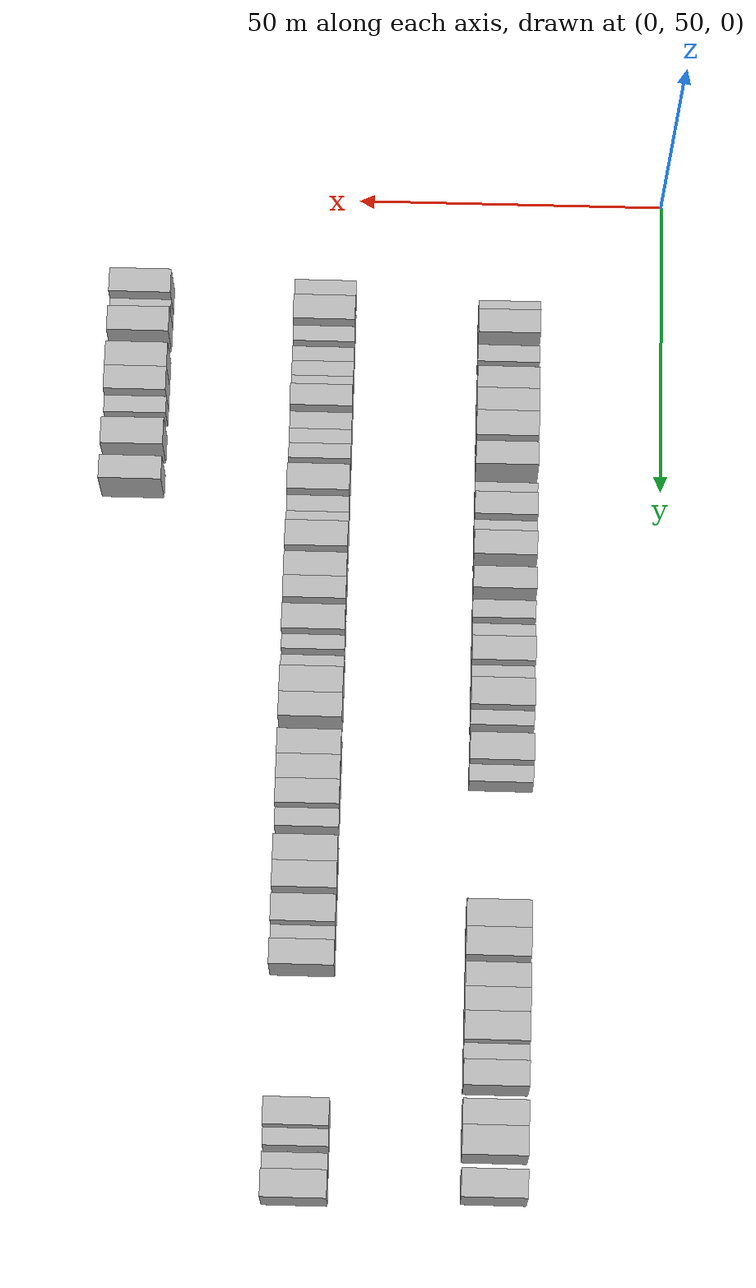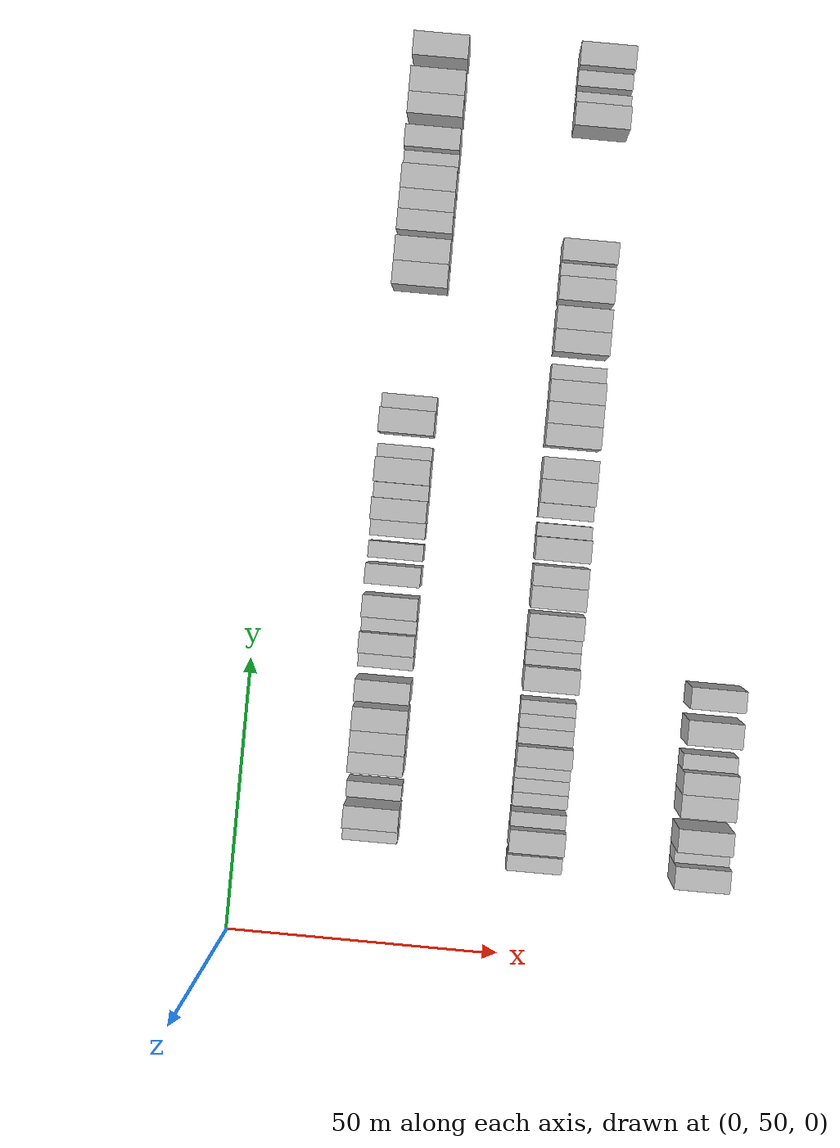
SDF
<sdf version="1.6">
 <world name="default">
  <model name="building_134">
   <static>1</static>
   <pose>25.0000 71.1269 0 0.000000 0.000000 0.000000</pose>
   <link name="link">
    <pose>0 0 3.00 0 0 0</pose>
    <collision name="collision"><geometry><box><size>10.0000 2.7324 6.0000</size></box></geometry></collision>
    <visual name="visual">
     <cast_shadows>0</cast_shadows>
     <geometry><box><size>10.0000 2.7324 6.0000</size></box></geometry>
     <material>
      <script>
       <uri>model://HANNAS_wall/materials/scripts</uri>
       <uri>model://HANNAS_wall/materials/textures</uri>
       <name>vrc/HANNAS_wall</name>
      </script>
     </material>
    </visual>
   </link>
  </model>
  <model name="building_135">
   <static>1</static>
   <pose>25.0000 74.4935 0 0.000000 0.000000 0.000000</pose>
   <link name="link">
    <pose>0 0 4.50 0 0 0</pose>
    <collision name="collision"><geometry><box><size>10.0000 4.0009 9.0000</size></box></geometry></collision>
    <visual name="visual">
     <cast_shadows>0</cast_shadows>
     <geometry><box><size>10.0000 4.0009 9.0000</size></box></geometry>
     <material>
      <script>
       <uri>model://HANNAS_wall/materials/scripts</uri>
       <uri>model://HANNAS_wall/materials/textures</uri>
       <name>vrc/HANNAS_wall</name>
      </script>
     </material>
    </visual>
   </link>
  </model>
  <model name="building_136">
   <static>1</static>
   <pose>25.0000 78.9356 0 0.000000 0.000000 0.000000</pose>
   <link name="link">
    <pose>0 0 3.00 0 0 0</pose>
    <collision name="collision"><geometry><box><size>10.0000 2.8832 6.0000</size></box></geometry></collision>
    <visual name="visual">
     <cast_shadows>0</cast_shadows>
     <geometry><box><size>10.0000 2.8832 6.0000</size></box></geometry>
     <material>
      <script>
       <uri>model://HANNAS_wall/materials/scripts</uri>
       <uri>model://HANNAS_wall/materials/textures</uri>
       <name>vrc/HANNAS_wall</name>
      </script>
     </material>
    </visual>
   </link>
  </model>
  <model name="building_137">
   <static>1</static>
   <pose>25.0000 84.2326 0 0.000000 0.000000 0.000000</pose>
   <link name="link">
    <pose>0 0 4.50 0 0 0</pose>
    <collision name="collision"><geometry><box><size>10.0000 3.7109 9.0000</size></box></geometry></collision>
    <visual name="visual">
     <cast_shadows>0</cast_shadows>
     <geometry><box><size>10.0000 3.7109 9.0000</size></box></geometry>
     <material>
      <script>
       <uri>model://HANNAS_wall/materials/scripts</uri>
       <uri>model://HANNAS_wall/materials/textures</uri>
       <name>vrc/HANNAS_wall</name>
      </script>
     </material>
    </visual>
   </link>
  </model>
  <model name="building_138">
   <static>1</static>
   <pose>25.0000 88.0184 0 0.000000 0.000000 0.000000</pose>
   <link name="link">
    <pose>0 0 4.50 0 0 0</pose>
    <collision name="collision"><geometry><box><size>10.0000 3.8606 9.0000</size></box></geometry></collision>
    <visual name="visual">
     <cast_shadows>0</cast_shadows>
     <geometry><box><size>10.0000 3.8606 9.0000</size></box></geometry>
     <material>
      <script>
       <uri>model://HANNAS_wall/materials/scripts</uri>
       <uri>model://HANNAS_wall/materials/textures</uri>
       <name>vrc/HANNAS_wall</name>
      </script>
     </material>
    </visual>
   </link>
  </model>
  <model name="building_139">
   <static>1</static>
   <pose>25.0000 92.0730 0 0.000000 0.000000 0.000000</pose>
   <link name="link">
    <pose>0 0 4.50 0 0 0</pose>
    <collision name="collision"><geometry><box><size>10.0000 4.2486 9.0000</size></box></geometry></collision>
    <visual name="visual">
     <cast_shadows>0</cast_shadows>
     <geometry><box><size>10.0000 4.2486 9.0000</size></box></geometry>
     <material>
      <script>
       <uri>model://HANNAS_wall/materials/scripts</uri>
       <uri>model://HANNAS_wall/materials/textures</uri>
       <name>vrc/HANNAS_wall</name>
      </script>
     </material>
    </visual>
   </link>
  </model>
  <model name="building_140">
   <static>1</static>
   <pose>25.0000 97.1494 0 0.000000 0.000000 0.000000</pose>
   <link name="link">
    <pose>0 0 4.50 0 0 0</pose>
    <collision name="collision"><geometry><box><size>10.0000 3.9041 9.0000</size></box></geometry></collision>
    <visual name="visual">
     <cast_shadows>0</cast_shadows>
     <geometry><box><size>10.0000 3.9041 9.0000</size></box></geometry>
     <material>
      <script>
       <uri>model://HANNAS_wall/materials/scripts</uri>
       <uri>model://HANNAS_wall/materials/textures</uri>
       <name>vrc/HANNAS_wall</name>
      </script>
     </material>
    </visual>
   </link>
  </model>
  <model name="building_141">
   <static>1</static>
   <pose>25.0000 102.4543 0 0.000000 0.000000 0.000000</pose>
   <link name="link">
    <pose>0 0 3.00 0 0 0</pose>
    <collision name="collision"><geometry><box><size>10.0000 2.7057 6.0000</size></box></geometry></collision>
    <visual name="visual">
     <cast_shadows>0</cast_shadows>
     <geometry><box><size>10.0000 2.7057 6.0000</size></box></geometry>
     <material>
      <script>
       <uri>model://HANNAS_wall/materials/scripts</uri>
       <uri>model://HANNAS_wall/materials/textures</uri>
       <name>vrc/HANNAS_wall</name>
      </script>
     </material>
    </visual>
   </link>
  </model>
  <model name="building_142">
   <static>1</static>
   <pose>25.0000 105.6702 0 0.000000 0.000000 0.000000</pose>
   <link name="link">
    <pose>0 0 4.50 0 0 0</pose>
    <collision name="collision"><geometry><box><size>10.0000 3.7262 9.0000</size></box></geometry></collision>
    <visual name="visual">
     <cast_shadows>0</cast_shadows>
     <geometry><box><size>10.0000 3.7262 9.0000</size></box></geometry>
     <material>
      <script>
       <uri>model://HANNAS_wall/materials/scripts</uri>
       <uri>model://HANNAS_wall/materials/textures</uri>
       <name>vrc/HANNAS_wall</name>
      </script>
     </material>
    </visual>
   </link>
  </model>
  <model name="building_143">
   <static>1</static>
   <pose>25.0000 108.8899 0 0.000000 0.000000 0.000000</pose>
   <link name="link">
    <pose>0 0 3.00 0 0 0</pose>
    <collision name="collision"><geometry><box><size>10.0000 2.7133 6.0000</size></box></geometry></collision>
    <visual name="visual">
     <cast_shadows>0</cast_shadows>
     <geometry><box><size>10.0000 2.7133 6.0000</size></box></geometry>
     <material>
      <script>
       <uri>model://HANNAS_wall/materials/scripts</uri>
       <uri>model://HANNAS_wall/materials/textures</uri>
       <name>vrc/HANNAS_wall</name>
      </script>
     </material>
    </visual>
   </link>
  </model>
  <model name="building_144">
   <static>1</static>
   <pose>25.0000 112.2482 0 0.000000 0.000000 0.000000</pose>
   <link name="link">
    <pose>0 0 4.50 0 0 0</pose>
    <collision name="collision"><geometry><box><size>10.0000 4.0033 9.0000</size></box></geometry></collision>
    <visual name="visual">
     <cast_shadows>0</cast_shadows>
     <geometry><box><size>10.0000 4.0033 9.0000</size></box></geometry>
     <material>
      <script>
       <uri>model://HANNAS_wall/materials/scripts</uri>
       <uri>model://HANNAS_wall/materials/textures</uri>
       <name>vrc/HANNAS_wall</name>
      </script>
     </material>
    </visual>
   </link>
  </model>
  <model name="building_145">
   <static>1</static>
   <pose>25.0000 118.0548 0 0.000000 0.000000 0.000000</pose>
   <link name="link">
    <pose>0 0 4.50 0 0 0</pose>
    <collision name="collision"><geometry><box><size>10.0000 3.6099 9.0000</size></box></geometry></collision>
    <visual name="visual">
     <cast_shadows>0</cast_shadows>
     <geometry><box><size>10.0000 3.6099 9.0000</size></box></geometry>
     <material>
      <script>
       <uri>model://HANNAS_wall/materials/scripts</uri>
       <uri>model://HANNAS_wall/materials/textures</uri>
       <name>vrc/HANNAS_wall</name>
      </script>
     </material>
    </visual>
   </link>
  </model>
  <model name="building_146">
   <static>1</static>
   <pose>25.0000 122.3439 0 0.000000 0.000000 0.000000</pose>
   <link name="link">
    <pose>0 0 3.00 0 0 0</pose>
    <collision name="collision"><geometry><box><size>10.0000 2.9682 6.0000</size></box></geometry></collision>
    <visual name="visual">
     <cast_shadows>0</cast_shadows>
     <geometry><box><size>10.0000 2.9682 6.0000</size></box></geometry>
     <material>
      <script>
       <uri>model://HANNAS_wall/materials/scripts</uri>
       <uri>model://HANNAS_wall/materials/textures</uri>
       <name>vrc/HANNAS_wall</name>
      </script>
     </material>
    </visual>
   </link>
  </model>
  <model name="building_147">
   <static>1</static>
   <pose>25.0000 126.2845 0 0.000000 0.000000 0.000000</pose>
   <link name="link">
    <pose>0 0 3.00 0 0 0</pose>
    <collision name="collision"><geometry><box><size>10.0000 2.9131 6.0000</size></box></geometry></collision>
    <visual name="visual">
     <cast_shadows>0</cast_shadows>
     <geometry><box><size>10.0000 2.9131 6.0000</size></box></geometry>
     <material>
      <script>
       <uri>model://HANNAS_wall/materials/scripts</uri>
       <uri>model://HANNAS_wall/materials/textures</uri>
       <name>vrc/HANNAS_wall</name>
      </script>
     </material>
    </visual>
   </link>
  </model>
  <model name="building_148">
   <static>1</static>
   <pose>25.0000 129.7110 0 0.000000 0.000000 0.000000</pose>
   <link name="link">
    <pose>0 0 4.50 0 0 0</pose>
    <collision name="collision"><geometry><box><size>10.0000 3.9400 9.0000</size></box></geometry></collision>
    <visual name="visual">
     <cast_shadows>0</cast_shadows>
     <geometry><box><size>10.0000 3.9400 9.0000</size></box></geometry>
     <material>
      <script>
       <uri>model://HANNAS_wall/materials/scripts</uri>
       <uri>model://HANNAS_wall/materials/textures</uri>
       <name>vrc/HANNAS_wall</name>
      </script>
     </material>
    </visual>
   </link>
  </model>
  <model name="building_149">
   <static>1</static>
   <pose>25.0000 133.0936 0 0.000000 0.000000 0.000000</pose>
   <link name="link">
    <pose>0 0 3.00 0 0 0</pose>
    <collision name="collision"><geometry><box><size>10.0000 2.8253 6.0000</size></box></geometry></collision>
    <visual name="visual">
     <cast_shadows>0</cast_shadows>
     <geometry><box><size>10.0000 2.8253 6.0000</size></box></geometry>
     <material>
      <script>
       <uri>model://HANNAS_wall/materials/scripts</uri>
       <uri>model://HANNAS_wall/materials/textures</uri>
       <name>vrc/HANNAS_wall</name>
      </script>
     </material>
    </visual>
   </link>
  </model>
  <model name="building_150">
   <static>1</static>
   <pose>25.0000 136.7367 0 0.000000 0.000000 0.000000</pose>
   <link name="link">
    <pose>0 0 4.50 0 0 0</pose>
    <collision name="collision"><geometry><box><size>10.0000 4.4610 9.0000</size></box></geometry></collision>
    <visual name="visual">
     <cast_shadows>0</cast_shadows>
     <geometry><box><size>10.0000 4.4610 9.0000</size></box></geometry>
     <material>
      <script>
       <uri>model://HANNAS_wall/materials/scripts</uri>
       <uri>model://HANNAS_wall/materials/textures</uri>
       <name>vrc/HANNAS_wall</name>
      </script>
     </material>
    </visual>
   </link>
  </model>
  <model name="building_151">
   <static>1</static>
   <pose>25.0000 140.1851 0 0.000000 0.000000 0.000000</pose>
   <link name="link">
    <pose>0 0 3.00 0 0 0</pose>
    <collision name="collision"><geometry><box><size>10.0000 2.4357 6.0000</size></box></geometry></collision>
    <visual name="visual">
     <cast_shadows>0</cast_shadows>
     <geometry><box><size>10.0000 2.4357 6.0000</size></box></geometry>
     <material>
      <script>
       <uri>model://HANNAS_wall/materials/scripts</uri>
       <uri>model://HANNAS_wall/materials/textures</uri>
       <name>vrc/HANNAS_wall</name>
      </script>
     </material>
    </visual>
   </link>
  </model>
  <model name="building_152">
   <static>1</static>
   <pose>25.0000 145.5972 0 0.000000 0.000000 0.000000</pose>
   <link name="link">
    <pose>0 0 4.50 0 0 0</pose>
    <collision name="collision"><geometry><box><size>10.0000 4.3886 9.0000</size></box></geometry></collision>
    <visual name="visual">
     <cast_shadows>0</cast_shadows>
     <geometry><box><size>10.0000 4.3886 9.0000</size></box></geometry>
     <material>
      <script>
       <uri>model://HANNAS_wall/materials/scripts</uri>
       <uri>model://HANNAS_wall/materials/textures</uri>
       <name>vrc/HANNAS_wall</name>
      </script>
     </material>
    </visual>
   </link>
  </model>
  <model name="building_153">
   <static>1</static>
   <pose>25.0000 149.1727 0 0.000000 0.000000 0.000000</pose>
   <link name="link">
    <pose>0 0 3.00 0 0 0</pose>
    <collision name="collision"><geometry><box><size>10.0000 2.7624 6.0000</size></box></geometry></collision>
    <visual name="visual">
     <cast_shadows>0</cast_shadows>
     <geometry><box><size>10.0000 2.7624 6.0000</size></box></geometry>
     <material>
      <script>
       <uri>model://HANNAS_wall/materials/scripts</uri>
       <uri>model://HANNAS_wall/materials/textures</uri>
       <name>vrc/HANNAS_wall</name>
      </script>
     </material>
    </visual>
   </link>
  </model>
  <model name="building_154">
   <static>1</static>
   <pose>25.0000 171.9703 0 0.000000 0.000000 0.000000</pose>
   <link name="link">
    <pose>0 0 4.50 0 0 0</pose>
    <collision name="collision"><geometry><box><size>10.0000 4.2776 9.0000</size></box></geometry></collision>
    <visual name="visual">
     <cast_shadows>0</cast_shadows>
     <geometry><box><size>10.0000 4.2776 9.0000</size></box></geometry>
     <material>
      <script>
       <uri>model://HANNAS_wall/materials/scripts</uri>
       <uri>model://HANNAS_wall/materials/textures</uri>
       <name>vrc/HANNAS_wall</name>
      </script>
     </material>
    </visual>
   </link>
  </model>
  <model name="building_155">
   <static>1</static>
   <pose>25.0000 176.3401 0 0.000000 0.000000 0.000000</pose>
   <link name="link">
    <pose>0 0 4.50 0 0 0</pose>
    <collision name="collision"><geometry><box><size>10.0000 4.4621 9.0000</size></box></geometry></collision>
    <visual name="visual">
     <cast_shadows>0</cast_shadows>
     <geometry><box><size>10.0000 4.4621 9.0000</size></box></geometry>
     <material>
      <script>
       <uri>model://HANNAS_wall/materials/scripts</uri>
       <uri>model://HANNAS_wall/materials/textures</uri>
       <name>vrc/HANNAS_wall</name>
      </script>
     </material>
    </visual>
   </link>
  </model>
  <model name="building_156">
   <static>1</static>
   <pose>25.0000 181.4689 0 0.000000 0.000000 0.000000</pose>
   <link name="link">
    <pose>0 0 4.50 0 0 0</pose>
    <collision name="collision"><geometry><box><size>10.0000 3.7954 9.0000</size></box></geometry></collision>
    <visual name="visual">
     <cast_shadows>0</cast_shadows>
     <geometry><box><size>10.0000 3.7954 9.0000</size></box></geometry>
     <material>
      <script>
       <uri>model://HANNAS_wall/materials/scripts</uri>
       <uri>model://HANNAS_wall/materials/textures</uri>
       <name>vrc/HANNAS_wall</name>
      </script>
     </material>
    </visual>
   </link>
  </model>
  <model name="building_157">
   <static>1</static>
   <pose>25.0000 185.2249 0 0.000000 0.000000 0.000000</pose>
   <link name="link">
    <pose>0 0 4.50 0 0 0</pose>
    <collision name="collision"><geometry><box><size>10.0000 3.7166 9.0000</size></box></geometry></collision>
    <visual name="visual">
     <cast_shadows>0</cast_shadows>
     <geometry><box><size>10.0000 3.7166 9.0000</size></box></geometry>
     <material>
      <script>
       <uri>model://HANNAS_wall/materials/scripts</uri>
       <uri>model://HANNAS_wall/materials/textures</uri>
       <name>vrc/HANNAS_wall</name>
      </script>
     </material>
    </visual>
   </link>
  </model>
  <model name="building_158">
   <static>1</static>
   <pose>25.0000 189.2924 0 0.000000 0.000000 0.000000</pose>
   <link name="link">
    <pose>0 0 4.50 0 0 0</pose>
    <collision name="collision"><geometry><box><size>10.0000 4.4186 9.0000</size></box></geometry></collision>
    <visual name="visual">
     <cast_shadows>0</cast_shadows>
     <geometry><box><size>10.0000 4.4186 9.0000</size></box></geometry>
     <material>
      <script>
       <uri>model://HANNAS_wall/materials/scripts</uri>
       <uri>model://HANNAS_wall/materials/textures</uri>
       <name>vrc/HANNAS_wall</name>
      </script>
     </material>
    </visual>
   </link>
  </model>
  <model name="building_159">
   <static>1</static>
   <pose>25.0000 192.9866 0 0.000000 0.000000 0.000000</pose>
   <link name="link">
    <pose>0 0 3.00 0 0 0</pose>
    <collision name="collision"><geometry><box><size>10.0000 2.9697 6.0000</size></box></geometry></collision>
    <visual name="visual">
     <cast_shadows>0</cast_shadows>
     <geometry><box><size>10.0000 2.9697 6.0000</size></box></geometry>
     <material>
      <script>
       <uri>model://HANNAS_wall/materials/scripts</uri>
       <uri>model://HANNAS_wall/materials/textures</uri>
       <name>vrc/HANNAS_wall</name>
      </script>
     </material>
    </visual>
   </link>
  </model>
  <model name="building_160">
   <static>1</static>
   <pose>25.0000 196.4459 0 0.000000 0.000000 0.000000</pose>
   <link name="link">
    <pose>0 0 4.50 0 0 0</pose>
    <collision name="collision"><geometry><box><size>10.0000 3.9490 9.0000</size></box></geometry></collision>
    <visual name="visual">
     <cast_shadows>0</cast_shadows>
     <geometry><box><size>10.0000 3.9490 9.0000</size></box></geometry>
     <material>
      <script>
       <uri>model://HANNAS_wall/materials/scripts</uri>
       <uri>model://HANNAS_wall/materials/textures</uri>
       <name>vrc/HANNAS_wall</name>
      </script>
     </material>
    </visual>
   </link>
  </model>
  <model name="building_161">
   <static>1</static>
   <pose>25.0000 202.3705 0 0.000000 0.000000 0.000000</pose>
   <link name="link">
    <pose>0 0 4.50 0 0 0</pose>
    <collision name="collision"><geometry><box><size>10.0000 3.9004 9.0000</size></box></geometry></collision>
    <visual name="visual">
     <cast_shadows>0</cast_shadows>
     <geometry><box><size>10.0000 3.9004 9.0000</size></box></geometry>
     <material>
      <script>
       <uri>model://HANNAS_wall/materials/scripts</uri>
       <uri>model://HANNAS_wall/materials/textures</uri>
       <name>vrc/HANNAS_wall</name>
      </script>
     </material>
    </visual>
   </link>
  </model>
  <model name="building_162">
   <static>1</static>
   <pose>25.0000 206.5666 0 0.000000 0.000000 0.000000</pose>
   <link name="link">
    <pose>0 0 4.50 0 0 0</pose>
    <collision name="collision"><geometry><box><size>10.0000 4.4916 9.0000</size></box></geometry></collision>
    <visual name="visual">
     <cast_shadows>0</cast_shadows>
     <geometry><box><size>10.0000 4.4916 9.0000</size></box></geometry>
     <material>
      <script>
       <uri>model://HANNAS_wall/materials/scripts</uri>
       <uri>model://HANNAS_wall/materials/textures</uri>
       <name>vrc/HANNAS_wall</name>
      </script>
     </material>
    </visual>
   </link>
  </model>
  <model name="building_163">
   <static>1</static>
   <pose>25.0000 212.9671 0 0.000000 0.000000 0.000000</pose>
   <link name="link">
    <pose>0 0 4.50 0 0 0</pose>
    <collision name="collision"><geometry><box><size>10.0000 4.3094 9.0000</size></box></geometry></collision>
    <visual name="visual">
     <cast_shadows>0</cast_shadows>
     <geometry><box><size>10.0000 4.3094 9.0000</size></box></geometry>
     <material>
      <script>
       <uri>model://HANNAS_wall/materials/scripts</uri>
       <uri>model://HANNAS_wall/materials/textures</uri>
       <name>vrc/HANNAS_wall</name>
      </script>
     </material>
    </visual>
   </link>
  </model>
  <model name="building_356">
   <static>1</static>
   <pose>55.0000 68.3287 0 0.000000 0.000000 0.000000</pose>
   <link name="link">
    <pose>0 0 3.00 0 0 0</pose>
    <collision name="collision"><geometry><box><size>10.0000 2.8849 6.0000</size></box></geometry></collision>
    <visual name="visual">
     <cast_shadows>0</cast_shadows>
     <geometry><box><size>10.0000 2.8849 6.0000</size></box></geometry>
     <material>
      <script>
       <uri>model://HANNAS_wall/materials/scripts</uri>
       <uri>model://HANNAS_wall/materials/textures</uri>
       <name>vrc/HANNAS_wall</name>
      </script>
     </material>
    </visual>
   </link>
  </model>
  <model name="building_357">
   <static>1</static>
   <pose>55.0000 72.8536 0 0.000000 0.000000 0.000000</pose>
   <link name="link">
    <pose>0 0 4.50 0 0 0</pose>
    <collision name="collision"><geometry><box><size>10.0000 4.1649 9.0000</size></box></geometry></collision>
    <visual name="visual">
     <cast_shadows>0</cast_shadows>
     <geometry><box><size>10.0000 4.1649 9.0000</size></box></geometry>
     <material>
      <script>
       <uri>model://HANNAS_wall/materials/scripts</uri>
       <uri>model://HANNAS_wall/materials/textures</uri>
       <name>vrc/HANNAS_wall</name>
      </script>
     </material>
    </visual>
   </link>
  </model>
  <model name="building_358">
   <static>1</static>
   <pose>55.0000 76.2622 0 0.000000 0.000000 0.000000</pose>
   <link name="link">
    <pose>0 0 3.00 0 0 0</pose>
    <collision name="collision"><geometry><box><size>10.0000 2.6524 6.0000</size></box></geometry></collision>
    <visual name="visual">
     <cast_shadows>0</cast_shadows>
     <geometry><box><size>10.0000 2.6524 6.0000</size></box></geometry>
     <material>
      <script>
       <uri>model://HANNAS_wall/materials/scripts</uri>
       <uri>model://HANNAS_wall/materials/textures</uri>
       <name>vrc/HANNAS_wall</name>
      </script>
     </material>
    </visual>
   </link>
  </model>
  <model name="building_359">
   <static>1</static>
   <pose>55.0000 79.8393 0 0.000000 0.000000 0.000000</pose>
   <link name="link">
    <pose>0 0 3.00 0 0 0</pose>
    <collision name="collision"><geometry><box><size>10.0000 2.5019 6.0000</size></box></geometry></collision>
    <visual name="visual">
     <cast_shadows>0</cast_shadows>
     <geometry><box><size>10.0000 2.5019 6.0000</size></box></geometry>
     <material>
      <script>
       <uri>model://HANNAS_wall/materials/scripts</uri>
       <uri>model://HANNAS_wall/materials/textures</uri>
       <name>vrc/HANNAS_wall</name>
      </script>
     </material>
    </visual>
   </link>
  </model>
  <model name="building_360">
   <static>1</static>
   <pose>55.0000 82.3666 0 0.000000 0.000000 0.000000</pose>
   <link name="link">
    <pose>0 0 3.00 0 0 0</pose>
    <collision name="collision"><geometry><box><size>10.0000 2.5527 6.0000</size></box></geometry></collision>
    <visual name="visual">
     <cast_shadows>0</cast_shadows>
     <geometry><box><size>10.0000 2.5527 6.0000</size></box></geometry>
     <material>
      <script>
       <uri>model://HANNAS_wall/materials/scripts</uri>
       <uri>model://HANNAS_wall/materials/textures</uri>
       <name>vrc/HANNAS_wall</name>
      </script>
     </material>
    </visual>
   </link>
  </model>
  <model name="building_361">
   <static>1</static>
   <pose>55.0000 84.9533 0 0.000000 0.000000 0.000000</pose>
   <link name="link">
    <pose>0 0 3.00 0 0 0</pose>
    <collision name="collision"><geometry><box><size>10.0000 2.6207 6.0000</size></box></geometry></collision>
    <visual name="visual">
     <cast_shadows>0</cast_shadows>
     <geometry><box><size>10.0000 2.6207 6.0000</size></box></geometry>
     <material>
      <script>
       <uri>model://HANNAS_wall/materials/scripts</uri>
       <uri>model://HANNAS_wall/materials/textures</uri>
       <name>vrc/HANNAS_wall</name>
      </script>
     </material>
    </visual>
   </link>
  </model>
  <model name="building_362">
   <static>1</static>
   <pose>55.0000 88.0778 0 0.000000 0.000000 0.000000</pose>
   <link name="link">
    <pose>0 0 4.50 0 0 0</pose>
    <collision name="collision"><geometry><box><size>10.0000 3.6282 9.0000</size></box></geometry></collision>
    <visual name="visual">
     <cast_shadows>0</cast_shadows>
     <geometry><box><size>10.0000 3.6282 9.0000</size></box></geometry>
     <material>
      <script>
       <uri>model://HANNAS_wall/materials/scripts</uri>
       <uri>model://HANNAS_wall/materials/textures</uri>
       <name>vrc/HANNAS_wall</name>
      </script>
     </material>
    </visual>
   </link>
  </model>
  <model name="building_363">
   <static>1</static>
   <pose>55.0000 91.3476 0 0.000000 0.000000 0.000000</pose>
   <link name="link">
    <pose>0 0 3.00 0 0 0</pose>
    <collision name="collision"><geometry><box><size>10.0000 2.9115 6.0000</size></box></geometry></collision>
    <visual name="visual">
     <cast_shadows>0</cast_shadows>
     <geometry><box><size>10.0000 2.9115 6.0000</size></box></geometry>
     <material>
      <script>
       <uri>model://HANNAS_wall/materials/scripts</uri>
       <uri>model://HANNAS_wall/materials/textures</uri>
       <name>vrc/HANNAS_wall</name>
      </script>
     </material>
    </visual>
   </link>
  </model>
  <model name="building_364">
   <static>1</static>
   <pose>55.0000 94.0400 0 0.000000 0.000000 0.000000</pose>
   <link name="link">
    <pose>0 0 3.00 0 0 0</pose>
    <collision name="collision"><geometry><box><size>10.0000 2.4732 6.0000</size></box></geometry></collision>
    <visual name="visual">
     <cast_shadows>0</cast_shadows>
     <geometry><box><size>10.0000 2.4732 6.0000</size></box></geometry>
     <material>
      <script>
       <uri>model://HANNAS_wall/materials/scripts</uri>
       <uri>model://HANNAS_wall/materials/textures</uri>
       <name>vrc/HANNAS_wall</name>
      </script>
     </material>
    </visual>
   </link>
  </model>
  <model name="building_365">
   <static>1</static>
   <pose>55.0000 96.5409 0 0.000000 0.000000 0.000000</pose>
   <link name="link">
    <pose>0 0 3.00 0 0 0</pose>
    <collision name="collision"><geometry><box><size>10.0000 2.5285 6.0000</size></box></geometry></collision>
    <visual name="visual">
     <cast_shadows>0</cast_shadows>
     <geometry><box><size>10.0000 2.5285 6.0000</size></box></geometry>
     <material>
      <script>
       <uri>model://HANNAS_wall/materials/scripts</uri>
       <uri>model://HANNAS_wall/materials/textures</uri>
       <name>vrc/HANNAS_wall</name>
      </script>
     </material>
    </visual>
   </link>
  </model>
  <model name="building_366">
   <static>1</static>
   <pose>55.0000 101.9753 0 0.000000 0.000000 0.000000</pose>
   <link name="link">
    <pose>0 0 4.50 0 0 0</pose>
    <collision name="collision"><geometry><box><size>10.0000 4.3404 9.0000</size></box></geometry></collision>
    <visual name="visual">
     <cast_shadows>0</cast_shadows>
     <geometry><box><size>10.0000 4.3404 9.0000</size></box></geometry>
     <material>
      <script>
       <uri>model://HANNAS_wall/materials/scripts</uri>
       <uri>model://HANNAS_wall/materials/textures</uri>
       <name>vrc/HANNAS_wall</name>
      </script>
     </material>
    </visual>
   </link>
  </model>
  <model name="building_367">
   <static>1</static>
   <pose>55.0000 105.5016 0 0.000000 0.000000 0.000000</pose>
   <link name="link">
    <pose>0 0 3.00 0 0 0</pose>
    <collision name="collision"><geometry><box><size>10.0000 2.7122 6.0000</size></box></geometry></collision>
    <visual name="visual">
     <cast_shadows>0</cast_shadows>
     <geometry><box><size>10.0000 2.7122 6.0000</size></box></geometry>
     <material>
      <script>
       <uri>model://HANNAS_wall/materials/scripts</uri>
       <uri>model://HANNAS_wall/materials/textures</uri>
       <name>vrc/HANNAS_wall</name>
      </script>
     </material>
    </visual>
   </link>
  </model>
  <model name="building_368">
   <static>1</static>
   <pose>55.0000 108.1220 0 0.000000 0.000000 0.000000</pose>
   <link name="link">
    <pose>0 0 3.00 0 0 0</pose>
    <collision name="collision"><geometry><box><size>10.0000 2.5288 6.0000</size></box></geometry></collision>
    <visual name="visual">
     <cast_shadows>0</cast_shadows>
     <geometry><box><size>10.0000 2.5288 6.0000</size></box></geometry>
     <material>
      <script>
       <uri>model://HANNAS_wall/materials/scripts</uri>
       <uri>model://HANNAS_wall/materials/textures</uri>
       <name>vrc/HANNAS_wall</name>
      </script>
     </material>
    </visual>
   </link>
  </model>
  <model name="building_369">
   <static>1</static>
   <pose>55.0000 111.4990 0 0.000000 0.000000 0.000000</pose>
   <link name="link">
    <pose>0 0 4.50 0 0 0</pose>
    <collision name="collision"><geometry><box><size>10.0000 4.2252 9.0000</size></box></geometry></collision>
    <visual name="visual">
     <cast_shadows>0</cast_shadows>
     <geometry><box><size>10.0000 4.2252 9.0000</size></box></geometry>
     <material>
      <script>
       <uri>model://HANNAS_wall/materials/scripts</uri>
       <uri>model://HANNAS_wall/materials/textures</uri>
       <name>vrc/HANNAS_wall</name>
      </script>
     </material>
    </visual>
   </link>
  </model>
  <model name="building_370">
   <static>1</static>
   <pose>55.0000 116.6051 0 0.000000 0.000000 0.000000</pose>
   <link name="link">
    <pose>0 0 4.50 0 0 0</pose>
    <collision name="collision"><geometry><box><size>10.0000 3.9870 9.0000</size></box></geometry></collision>
    <visual name="visual">
     <cast_shadows>0</cast_shadows>
     <geometry><box><size>10.0000 3.9870 9.0000</size></box></geometry>
     <material>
      <script>
       <uri>model://HANNAS_wall/materials/scripts</uri>
       <uri>model://HANNAS_wall/materials/textures</uri>
       <name>vrc/HANNAS_wall</name>
      </script>
     </material>
    </visual>
   </link>
  </model>
  <model name="building_371">
   <static>1</static>
   <pose>55.0000 120.4279 0 0.000000 0.000000 0.000000</pose>
   <link name="link">
    <pose>0 0 4.50 0 0 0</pose>
    <collision name="collision"><geometry><box><size>10.0000 3.6586 9.0000</size></box></geometry></collision>
    <visual name="visual">
     <cast_shadows>0</cast_shadows>
     <geometry><box><size>10.0000 3.6586 9.0000</size></box></geometry>
     <material>
      <script>
       <uri>model://HANNAS_wall/materials/scripts</uri>
       <uri>model://HANNAS_wall/materials/textures</uri>
       <name>vrc/HANNAS_wall</name>
      </script>
     </material>
    </visual>
   </link>
  </model>
  <model name="building_372">
   <static>1</static>
   <pose>55.0000 125.3155 0 0.000000 0.000000 0.000000</pose>
   <link name="link">
    <pose>0 0 4.50 0 0 0</pose>
    <collision name="collision"><geometry><box><size>10.0000 4.1165 9.0000</size></box></geometry></collision>
    <visual name="visual">
     <cast_shadows>0</cast_shadows>
     <geometry><box><size>10.0000 4.1165 9.0000</size></box></geometry>
     <material>
      <script>
       <uri>model://HANNAS_wall/materials/scripts</uri>
       <uri>model://HANNAS_wall/materials/textures</uri>
       <name>vrc/HANNAS_wall</name>
      </script>
     </material>
    </visual>
   </link>
  </model>
  <model name="building_373">
   <static>1</static>
   <pose>55.0000 128.5766 0 0.000000 0.000000 0.000000</pose>
   <link name="link">
    <pose>0 0 3.00 0 0 0</pose>
    <collision name="collision"><geometry><box><size>10.0000 2.4057 6.0000</size></box></geometry></collision>
    <visual name="visual">
     <cast_shadows>0</cast_shadows>
     <geometry><box><size>10.0000 2.4057 6.0000</size></box></geometry>
     <material>
      <script>
       <uri>model://HANNAS_wall/materials/scripts</uri>
       <uri>model://HANNAS_wall/materials/textures</uri>
       <name>vrc/HANNAS_wall</name>
      </script>
     </material>
    </visual>
   </link>
  </model>
  <model name="building_374">
   <static>1</static>
   <pose>55.0000 132.1086 0 0.000000 0.000000 0.000000</pose>
   <link name="link">
    <pose>0 0 3.00 0 0 0</pose>
    <collision name="collision"><geometry><box><size>10.0000 2.6582 6.0000</size></box></geometry></collision>
    <visual name="visual">
     <cast_shadows>0</cast_shadows>
     <geometry><box><size>10.0000 2.6582 6.0000</size></box></geometry>
     <material>
      <script>
       <uri>model://HANNAS_wall/materials/scripts</uri>
       <uri>model://HANNAS_wall/materials/textures</uri>
       <name>vrc/HANNAS_wall</name>
      </script>
     </material>
    </visual>
   </link>
  </model>
  <model name="building_375">
   <static>1</static>
   <pose>55.0000 135.5566 0 0.000000 0.000000 0.000000</pose>
   <link name="link">
    <pose>0 0 4.50 0 0 0</pose>
    <collision name="collision"><geometry><box><size>10.0000 4.2377 9.0000</size></box></geometry></collision>
    <visual name="visual">
     <cast_shadows>0</cast_shadows>
     <geometry><box><size>10.0000 4.2377 9.0000</size></box></geometry>
     <material>
      <script>
       <uri>model://HANNAS_wall/materials/scripts</uri>
       <uri>model://HANNAS_wall/materials/textures</uri>
       <name>vrc/HANNAS_wall</name>
      </script>
     </material>
    </visual>
   </link>
  </model>
  <model name="building_376">
   <static>1</static>
   <pose>55.0000 139.6535 0 0.000000 0.000000 0.000000</pose>
   <link name="link">
    <pose>0 0 4.50 0 0 0</pose>
    <collision name="collision"><geometry><box><size>10.0000 3.9561 9.0000</size></box></geometry></collision>
    <visual name="visual">
     <cast_shadows>0</cast_shadows>
     <geometry><box><size>10.0000 3.9561 9.0000</size></box></geometry>
     <material>
      <script>
       <uri>model://HANNAS_wall/materials/scripts</uri>
       <uri>model://HANNAS_wall/materials/textures</uri>
       <name>vrc/HANNAS_wall</name>
      </script>
     </material>
    </visual>
   </link>
  </model>
  <model name="building_377">
   <static>1</static>
   <pose>55.0000 145.6481 0 0.000000 0.000000 0.000000</pose>
   <link name="link">
    <pose>0 0 4.50 0 0 0</pose>
    <collision name="collision"><geometry><box><size>10.0000 4.0333 9.0000</size></box></geometry></collision>
    <visual name="visual">
     <cast_shadows>0</cast_shadows>
     <geometry><box><size>10.0000 4.0333 9.0000</size></box></geometry>
     <material>
      <script>
       <uri>model://HANNAS_wall/materials/scripts</uri>
       <uri>model://HANNAS_wall/materials/textures</uri>
       <name>vrc/HANNAS_wall</name>
      </script>
     </material>
    </visual>
   </link>
  </model>
  <model name="building_378">
   <static>1</static>
   <pose>55.0000 149.6262 0 0.000000 0.000000 0.000000</pose>
   <link name="link">
    <pose>0 0 4.50 0 0 0</pose>
    <collision name="collision"><geometry><box><size>10.0000 3.9229 9.0000</size></box></geometry></collision>
    <visual name="visual">
     <cast_shadows>0</cast_shadows>
     <geometry><box><size>10.0000 3.9229 9.0000</size></box></geometry>
     <material>
      <script>
       <uri>model://HANNAS_wall/materials/scripts</uri>
       <uri>model://HANNAS_wall/materials/textures</uri>
       <name>vrc/HANNAS_wall</name>
      </script>
     </material>
    </visual>
   </link>
  </model>
  <model name="building_379">
   <static>1</static>
   <pose>55.0000 153.5502 0 0.000000 0.000000 0.000000</pose>
   <link name="link">
    <pose>0 0 4.50 0 0 0</pose>
    <collision name="collision"><geometry><box><size>10.0000 3.9251 9.0000</size></box></geometry></collision>
    <visual name="visual">
     <cast_shadows>0</cast_shadows>
     <geometry><box><size>10.0000 3.9251 9.0000</size></box></geometry>
     <material>
      <script>
       <uri>model://HANNAS_wall/materials/scripts</uri>
       <uri>model://HANNAS_wall/materials/textures</uri>
       <name>vrc/HANNAS_wall</name>
      </script>
     </material>
    </visual>
   </link>
  </model>
  <model name="building_380">
   <static>1</static>
   <pose>55.0000 156.9873 0 0.000000 0.000000 0.000000</pose>
   <link name="link">
    <pose>0 0 3.00 0 0 0</pose>
    <collision name="collision"><geometry><box><size>10.0000 2.9490 6.0000</size></box></geometry></collision>
    <visual name="visual">
     <cast_shadows>0</cast_shadows>
     <geometry><box><size>10.0000 2.9490 6.0000</size></box></geometry>
     <material>
      <script>
       <uri>model://HANNAS_wall/materials/scripts</uri>
       <uri>model://HANNAS_wall/materials/textures</uri>
       <name>vrc/HANNAS_wall</name>
      </script>
     </material>
    </visual>
   </link>
  </model>
  <model name="building_381">
   <static>1</static>
   <pose>55.0000 162.5239 0 0.000000 0.000000 0.000000</pose>
   <link name="link">
    <pose>0 0 4.50 0 0 0</pose>
    <collision name="collision"><geometry><box><size>10.0000 4.1242 9.0000</size></box></geometry></collision>
    <visual name="visual">
     <cast_shadows>0</cast_shadows>
     <geometry><box><size>10.0000 4.1242 9.0000</size></box></geometry>
     <material>
      <script>
       <uri>model://HANNAS_wall/materials/scripts</uri>
       <uri>model://HANNAS_wall/materials/textures</uri>
       <name>vrc/HANNAS_wall</name>
      </script>
     </material>
    </visual>
   </link>
  </model>
  <model name="building_382">
   <static>1</static>
   <pose>55.0000 166.6689 0 0.000000 0.000000 0.000000</pose>
   <link name="link">
    <pose>0 0 4.50 0 0 0</pose>
    <collision name="collision"><geometry><box><size>10.0000 4.1659 9.0000</size></box></geometry></collision>
    <visual name="visual">
     <cast_shadows>0</cast_shadows>
     <geometry><box><size>10.0000 4.1659 9.0000</size></box></geometry>
     <material>
      <script>
       <uri>model://HANNAS_wall/materials/scripts</uri>
       <uri>model://HANNAS_wall/materials/textures</uri>
       <name>vrc/HANNAS_wall</name>
      </script>
     </material>
    </visual>
   </link>
  </model>
  <model name="building_383">
   <static>1</static>
   <pose>55.0000 171.9012 0 0.000000 0.000000 0.000000</pose>
   <link name="link">
    <pose>0 0 4.50 0 0 0</pose>
    <collision name="collision"><geometry><box><size>10.0000 4.2986 9.0000</size></box></geometry></collision>
    <visual name="visual">
     <cast_shadows>0</cast_shadows>
     <geometry><box><size>10.0000 4.2986 9.0000</size></box></geometry>
     <material>
      <script>
       <uri>model://HANNAS_wall/materials/scripts</uri>
       <uri>model://HANNAS_wall/materials/textures</uri>
       <name>vrc/HANNAS_wall</name>
      </script>
     </material>
    </visual>
   </link>
  </model>
  <model name="building_384">
   <static>1</static>
   <pose>55.0000 175.4289 0 0.000000 0.000000 0.000000</pose>
   <link name="link">
    <pose>0 0 3.00 0 0 0</pose>
    <collision name="collision"><geometry><box><size>10.0000 2.7568 6.0000</size></box></geometry></collision>
    <visual name="visual">
     <cast_shadows>0</cast_shadows>
     <geometry><box><size>10.0000 2.7568 6.0000</size></box></geometry>
     <material>
      <script>
       <uri>model://HANNAS_wall/materials/scripts</uri>
       <uri>model://HANNAS_wall/materials/textures</uri>
       <name>vrc/HANNAS_wall</name>
      </script>
     </material>
    </visual>
   </link>
  </model>
  <model name="building_385">
   <static>1</static>
   <pose>55.0000 178.7823 0 0.000000 0.000000 0.000000</pose>
   <link name="link">
    <pose>0 0 4.50 0 0 0</pose>
    <collision name="collision"><geometry><box><size>10.0000 3.9501 9.0000</size></box></geometry></collision>
    <visual name="visual">
     <cast_shadows>0</cast_shadows>
     <geometry><box><size>10.0000 3.9501 9.0000</size></box></geometry>
     <material>
      <script>
       <uri>model://HANNAS_wall/materials/scripts</uri>
       <uri>model://HANNAS_wall/materials/textures</uri>
       <name>vrc/HANNAS_wall</name>
      </script>
     </material>
    </visual>
   </link>
  </model>
  <model name="building_386">
   <static>1</static>
   <pose>55.0000 203.0269 0 0.000000 0.000000 0.000000</pose>
   <link name="link">
    <pose>0 0 4.50 0 0 0</pose>
    <collision name="collision"><geometry><box><size>10.0000 4.1797 9.0000</size></box></geometry></collision>
    <visual name="visual">
     <cast_shadows>0</cast_shadows>
     <geometry><box><size>10.0000 4.1797 9.0000</size></box></geometry>
     <material>
      <script>
       <uri>model://HANNAS_wall/materials/scripts</uri>
       <uri>model://HANNAS_wall/materials/textures</uri>
       <name>vrc/HANNAS_wall</name>
      </script>
     </material>
    </visual>
   </link>
  </model>
  <model name="building_387">
   <static>1</static>
   <pose>55.0000 206.4562 0 0.000000 0.000000 0.000000</pose>
   <link name="link">
    <pose>0 0 3.00 0 0 0</pose>
    <collision name="collision"><geometry><box><size>10.0000 2.6789 6.0000</size></box></geometry></collision>
    <visual name="visual">
     <cast_shadows>0</cast_shadows>
     <geometry><box><size>10.0000 2.6789 6.0000</size></box></geometry>
     <material>
      <script>
       <uri>model://HANNAS_wall/materials/scripts</uri>
       <uri>model://HANNAS_wall/materials/textures</uri>
       <name>vrc/HANNAS_wall</name>
      </script>
     </material>
    </visual>
   </link>
  </model>
  <model name="building_388">
   <static>1</static>
   <pose>55.0000 210.2428 0 0.000000 0.000000 0.000000</pose>
   <link name="link">
    <pose>0 0 3.00 0 0 0</pose>
    <collision name="collision"><geometry><box><size>10.0000 2.8943 6.0000</size></box></geometry></collision>
    <visual name="visual">
     <cast_shadows>0</cast_shadows>
     <geometry><box><size>10.0000 2.8943 6.0000</size></box></geometry>
     <material>
      <script>
       <uri>model://HANNAS_wall/materials/scripts</uri>
       <uri>model://HANNAS_wall/materials/textures</uri>
       <name>vrc/HANNAS_wall</name>
      </script>
     </material>
    </visual>
   </link>
  </model>
  <model name="building_389">
   <static>1</static>
   <pose>55.0000 213.8146 0 0.000000 0.000000 0.000000</pose>
   <link name="link">
    <pose>0 0 4.50 0 0 0</pose>
    <collision name="collision"><geometry><box><size>10.0000 4.2492 9.0000</size></box></geometry></collision>
    <visual name="visual">
     <cast_shadows>0</cast_shadows>
     <geometry><box><size>10.0000 4.2492 9.0000</size></box></geometry>
     <material>
      <script>
       <uri>model://HANNAS_wall/materials/scripts</uri>
       <uri>model://HANNAS_wall/materials/textures</uri>
       <name>vrc/HANNAS_wall</name>
      </script>
     </material>
    </visual>
   </link>
  </model>
  <model name="building_587">
   <static>1</static>
   <pose>85.0000 68.9780 0 0.000000 0.000000 0.000000</pose>
   <link name="link">
    <pose>0 0 4.50 0 0 0</pose>
    <collision name="collision"><geometry><box><size>10.0000 4.0845 9.0000</size></box></geometry></collision>
    <visual name="visual">
     <cast_shadows>0</cast_shadows>
     <geometry><box><size>10.0000 4.0845 9.0000</size></box></geometry>
     <material>
      <script>
       <uri>model://HANNAS_wall/materials/scripts</uri>
       <uri>model://HANNAS_wall/materials/textures</uri>
       <name>vrc/HANNAS_wall</name>
      </script>
     </material>
    </visual>
   </link>
  </model>
  <model name="building_588">
   <static>1</static>
   <pose>85.0000 72.2883 0 0.000000 0.000000 0.000000</pose>
   <link name="link">
    <pose>0 0 3.00 0 0 0</pose>
    <collision name="collision"><geometry><box><size>10.0000 2.5360 6.0000</size></box></geometry></collision>
    <visual name="visual">
     <cast_shadows>0</cast_shadows>
     <geometry><box><size>10.0000 2.5360 6.0000</size></box></geometry>
     <material>
      <script>
       <uri>model://HANNAS_wall/materials/scripts</uri>
       <uri>model://HANNAS_wall/materials/textures</uri>
       <name>vrc/HANNAS_wall</name>
      </script>
     </material>
    </visual>
   </link>
  </model>
  <model name="building_589">
   <static>1</static>
   <pose>85.0000 75.6497 0 0.000000 0.000000 0.000000</pose>
   <link name="link">
    <pose>0 0 4.50 0 0 0</pose>
    <collision name="collision"><geometry><box><size>10.0000 4.1869 9.0000</size></box></geometry></collision>
    <visual name="visual">
     <cast_shadows>0</cast_shadows>
     <geometry><box><size>10.0000 4.1869 9.0000</size></box></geometry>
     <material>
      <script>
       <uri>model://HANNAS_wall/materials/scripts</uri>
       <uri>model://HANNAS_wall/materials/textures</uri>
       <name>vrc/HANNAS_wall</name>
      </script>
     </material>
    </visual>
   </link>
  </model>
  <model name="building_590">
   <static>1</static>
   <pose>85.0000 81.8208 0 0.000000 0.000000 0.000000</pose>
   <link name="link">
    <pose>0 0 4.50 0 0 0</pose>
    <collision name="collision"><geometry><box><size>10.0000 4.1553 9.0000</size></box></geometry></collision>
    <visual name="visual">
     <cast_shadows>0</cast_shadows>
     <geometry><box><size>10.0000 4.1553 9.0000</size></box></geometry>
     <material>
      <script>
       <uri>model://HANNAS_wall/materials/scripts</uri>
       <uri>model://HANNAS_wall/materials/textures</uri>
       <name>vrc/HANNAS_wall</name>
      </script>
     </material>
    </visual>
   </link>
  </model>
  <model name="building_591">
   <static>1</static>
   <pose>85.0000 85.9088 0 0.000000 0.000000 0.000000</pose>
   <link name="link">
    <pose>0 0 4.50 0 0 0</pose>
    <collision name="collision"><geometry><box><size>10.0000 4.0207 9.0000</size></box></geometry></collision>
    <visual name="visual">
     <cast_shadows>0</cast_shadows>
     <geometry><box><size>10.0000 4.0207 9.0000</size></box></geometry>
     <material>
      <script>
       <uri>model://HANNAS_wall/materials/scripts</uri>
       <uri>model://HANNAS_wall/materials/textures</uri>
       <name>vrc/HANNAS_wall</name>
      </script>
     </material>
    </visual>
   </link>
  </model>
  <model name="building_592">
   <static>1</static>
   <pose>85.0000 89.3342 0 0.000000 0.000000 0.000000</pose>
   <link name="link">
    <pose>0 0 3.00 0 0 0</pose>
    <collision name="collision"><geometry><box><size>10.0000 2.8302 6.0000</size></box></geometry></collision>
    <visual name="visual">
     <cast_shadows>0</cast_shadows>
     <geometry><box><size>10.0000 2.8302 6.0000</size></box></geometry>
     <material>
      <script>
       <uri>model://HANNAS_wall/materials/scripts</uri>
       <uri>model://HANNAS_wall/materials/textures</uri>
       <name>vrc/HANNAS_wall</name>
      </script>
     </material>
    </visual>
   </link>
  </model>
  <model name="building_593">
   <static>1</static>
   <pose>85.0000 94.9924 0 0.000000 0.000000 0.000000</pose>
   <link name="link">
    <pose>0 0 4.50 0 0 0</pose>
    <collision name="collision"><geometry><box><size>10.0000 4.4862 9.0000</size></box></geometry></collision>
    <visual name="visual">
     <cast_shadows>0</cast_shadows>
     <geometry><box><size>10.0000 4.4862 9.0000</size></box></geometry>
     <material>
      <script>
       <uri>model://HANNAS_wall/materials/scripts</uri>
       <uri>model://HANNAS_wall/materials/textures</uri>
       <name>vrc/HANNAS_wall</name>
      </script>
     </material>
    </visual>
   </link>
  </model>
  <model name="building_594">
   <static>1</static>
   <pose>85.0000 101.1890 0 0.000000 0.000000 0.000000</pose>
   <link name="link">
    <pose>0 0 4.50 0 0 0</pose>
    <collision name="collision"><geometry><box><size>10.0000 3.9069 9.0000</size></box></geometry></collision>
    <visual name="visual">
     <cast_shadows>0</cast_shadows>
     <geometry><box><size>10.0000 3.9069 9.0000</size></box></geometry>
     <material>
      <script>
       <uri>model://HANNAS_wall/materials/scripts</uri>
       <uri>model://HANNAS_wall/materials/textures</uri>
       <name>vrc/HANNAS_wall</name>
      </script>
     </material>
    </visual>
   </link>
  </model>
 </world>
</sdf>
